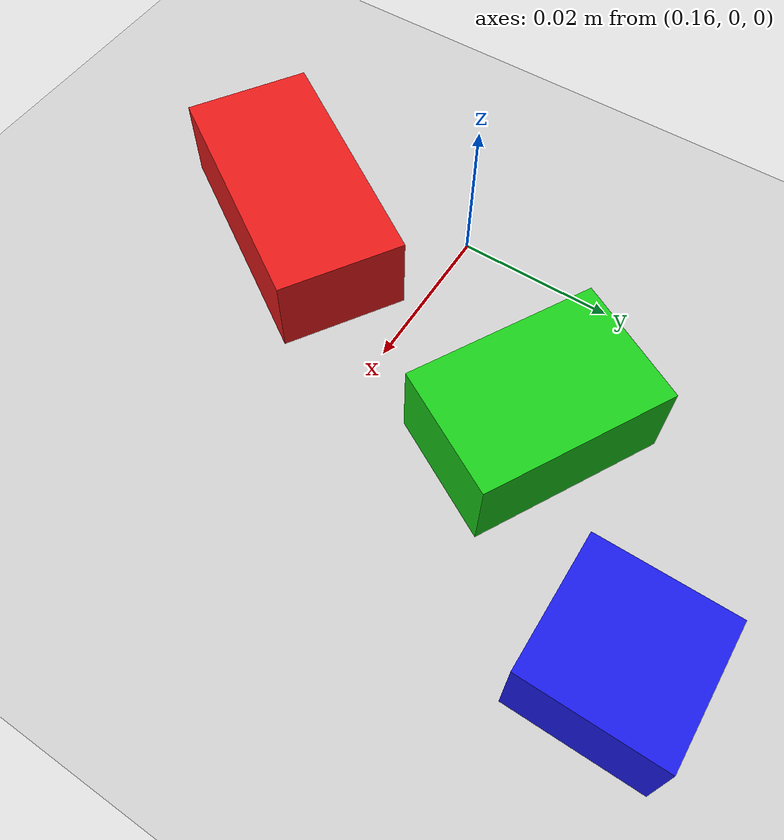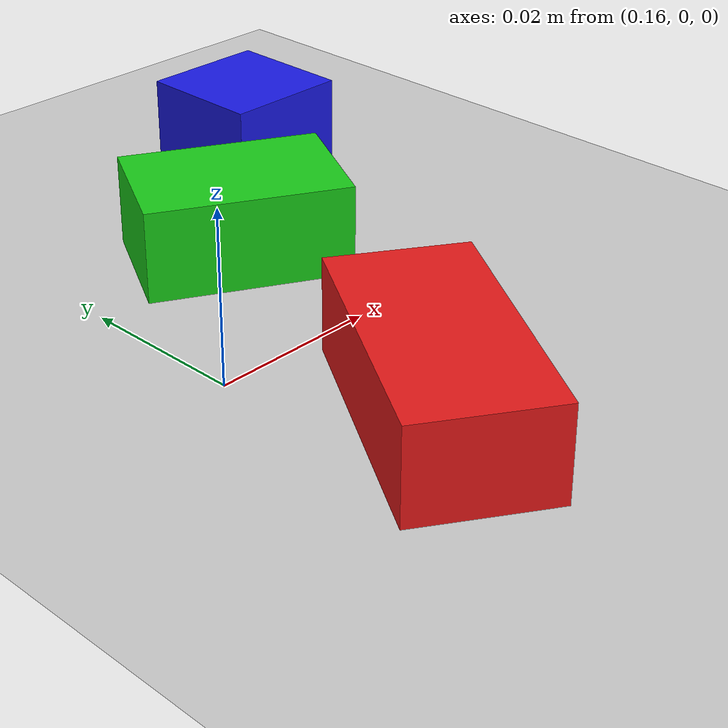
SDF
<?xml version="1.0" ?>
<sdf version="1.8">
  <world name="lego_world">

    <!-- Physics -->
    <physics name="1ms" type="ignored">
      <max_step_size>0.001</max_step_size>
      <real_time_factor>1.0</real_time_factor>
      <ode>
        <solver>
          <type>quick</type>
          <iters>200</iters>
          <sor>1.3</sor>
        </solver>
        <constraints>
          <cfm>0.0</cfm>
          <erp>0.2</erp>
          <contact_max_correcting_vel>100</contact_max_correcting_vel>
          <contact_surface_layer>0.001</contact_surface_layer>
        </constraints>
      </ode>
    </physics>

    <!-- Required Ignition Gazebo system plugins -->
    <plugin filename="ignition-gazebo-physics-system"
            name="ignition::gazebo::systems::Physics"/>
    <plugin filename="ignition-gazebo-user-commands-system"
            name="ignition::gazebo::systems::UserCommands"/>
    <plugin filename="ignition-gazebo-scene-broadcaster-system"
            name="ignition::gazebo::systems::SceneBroadcaster"/>
    <plugin filename="ignition-gazebo-sensors-system"
            name="ignition::gazebo::systems::Sensors">
      <render_engine>ogre2</render_engine>
    </plugin>
    <plugin filename="ignition-gazebo-contact-system"
            name="ignition::gazebo::systems::Contact"/>

    <!-- Sun light -->
    <light type="directional" name="sun">
      <cast_shadows>true</cast_shadows>
      <pose>0 0 10 0 0 0</pose>
      <diffuse>0.9 0.9 0.9 1</diffuse>
      <specular>0.3 0.3 0.3 1</specular>
      <attenuation>
        <range>1000</range>
        <constant>0.9</constant>
        <linear>0.01</linear>
        <quadratic>0.001</quadratic>
      </attenuation>
      <direction>-0.5 0.1 -0.9</direction>
    </light>

    <!-- Ambient light for better visibility -->
    <light type="directional" name="fill_light">
      <cast_shadows>false</cast_shadows>
      <pose>0 0 5 0 0 0</pose>
      <diffuse>0.4 0.4 0.4 1</diffuse>
      <specular>0.1 0.1 0.1 1</specular>
      <direction>0.5 -0.3 -0.7</direction>
    </light>

    <!-- Ground plane -->
    <model name="ground_plane">
      <static>true</static>
      <link name="link">
        <collision name="collision">
          <geometry>
            <plane>
              <normal>0 0 1</normal>
              <size>100 100</size>
            </plane>
          </geometry>
          <surface>
            <friction>
              <ode>
                <mu>1.0</mu>
                <mu2>1.0</mu2>
              </ode>
            </friction>
            <contact>
              <ode>
                <min_depth>0.001</min_depth>
              </ode>
            </contact>
          </surface>
        </collision>
        <visual name="visual">
          <geometry>
            <plane>
              <normal>0 0 1</normal>
              <size>100 100</size>
            </plane>
          </geometry>
          <material>
            <ambient>0.8 0.8 0.8 1</ambient>
            <diffuse>0.8 0.8 0.8 1</diffuse>
          </material>
        </visual>
      </link>
    </model>

    <!-- Red lego 2x4: 32x16x11mm -->
    <model name="red_lego_2x4">
      <static>true</static>
      <pose>0.17 -0.02 0.0055 0 0 1.0</pose>
      <link name="link">
        <collision name="collision">
          <geometry>
            <box><size>0.032 0.016 0.011</size></box>
          </geometry>
        </collision>
        <visual name="visual">
          <geometry>
            <box><size>0.032 0.016 0.011</size></box>
          </geometry>
          <material>
            <ambient>0.9 0.1 0.1 1</ambient>
            <diffuse>0.9 0.1 0.1 1</diffuse>
            <specular>0.3 0.1 0.1 1</specular>
          </material>
        </visual>
      </link>
    </model>

    <!-- Green lego 2x3: 24x16x11mm -->
    <model name="green_lego_2x3">
      <static>true</static>
      <pose>0.18 0.02 0.0055 0 0 -0.5</pose>
      <link name="link">
        <collision name="collision">
          <geometry>
            <box><size>0.024 0.016 0.011</size></box>
          </geometry>
        </collision>
        <visual name="visual">
          <geometry>
            <box><size>0.024 0.016 0.011</size></box>
          </geometry>
          <material>
            <ambient>0.1 0.8 0.1 1</ambient>
            <diffuse>0.1 0.8 0.1 1</diffuse>
            <specular>0.1 0.3 0.1 1</specular>
          </material>
        </visual>
      </link>
    </model>

    <!-- Blue lego 2x2: 16x16x11mm -->
    <model name="blue_lego_2x2">
      <static>true</static>
      <pose>0.20 0.04 0.0055 0 0 0.0</pose>
      <link name="link">
        <collision name="collision">
          <geometry>
            <box><size>0.016 0.016 0.011</size></box>
          </geometry>
        </collision>
        <visual name="visual">
          <geometry>
            <box><size>0.016 0.016 0.011</size></box>
          </geometry>
          <material>
            <ambient>0.1 0.1 0.9 1</ambient>
            <diffuse>0.1 0.1 0.9 1</diffuse>
            <specular>0.1 0.1 0.3 1</specular>
          </material>
        </visual>
      </link>
    </model>

    <!-- Legacy camera_stand removed — JETANK's own camera on CAMERA_1 is active -->

  </world>
</sdf>
